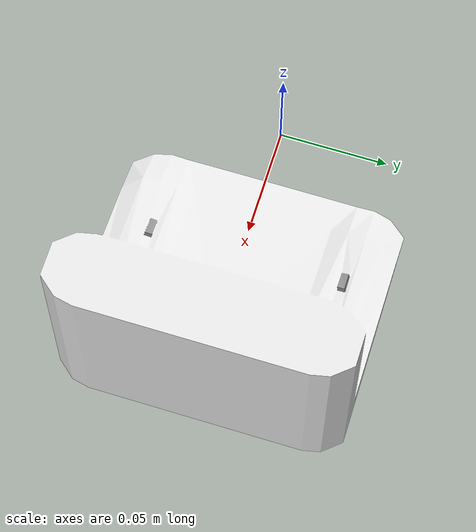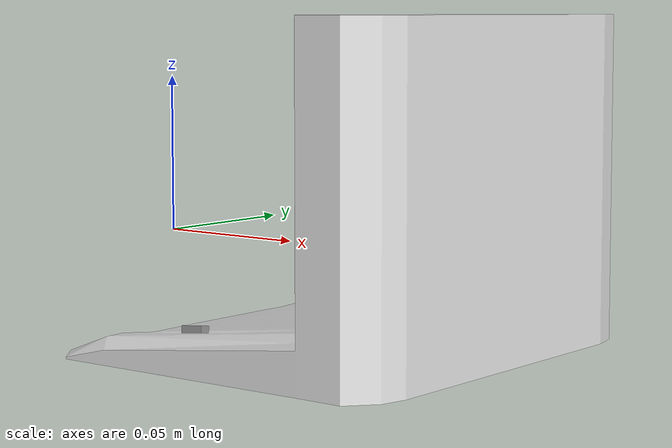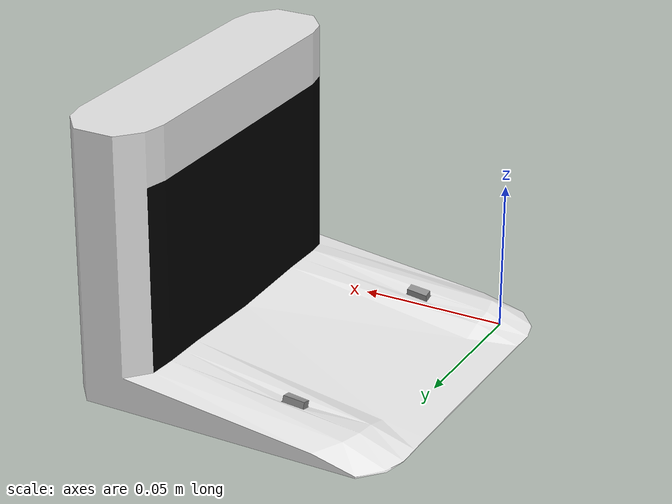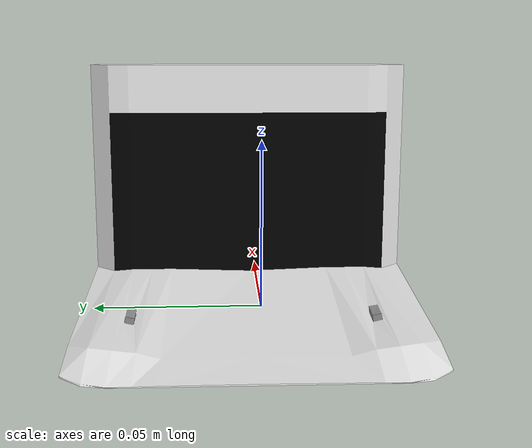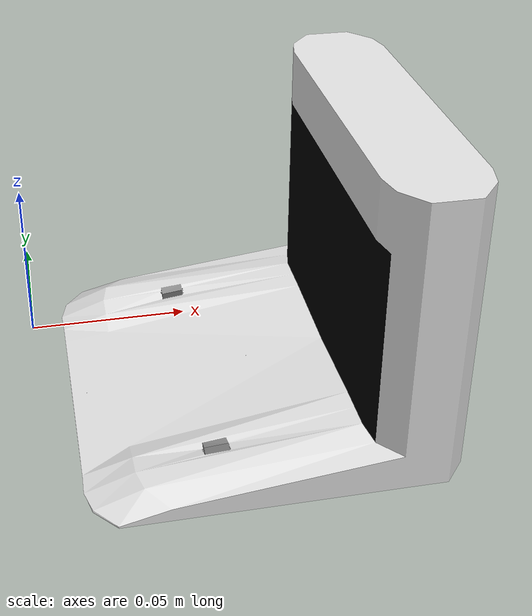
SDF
<?xml version="1.0"?>

<sdf version="1.6">
  <model name="charging_station_v2">
    <pose>0.0 0.0 0.0 0.0 0.0 0.0</pose>
    <static>true</static>

    <link name="main_link">
      <pose>0.0 0.0 0.0 0.0 0.0 0.0</pose>

      <visual name="visual">
        <pose>0 0 0 0 0 0</pose>
        <geometry>
          <mesh>
            <uri>model://charging_station_v2/meshes/charging_station_visual_v2.dae</uri>
            <scale>0.5 0.5 0.5</scale>
          </mesh>
        </geometry>
      </visual>

    </link>

  </model>
</sdf>
